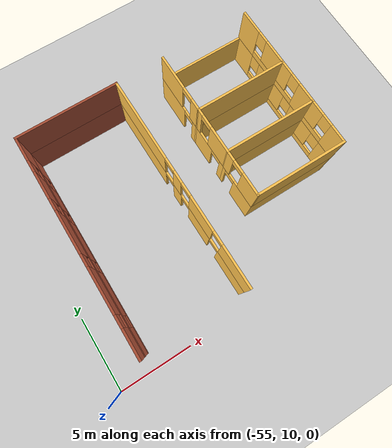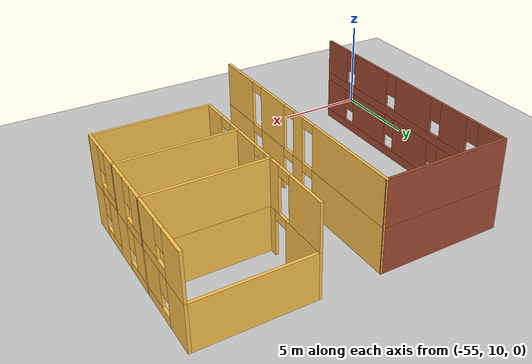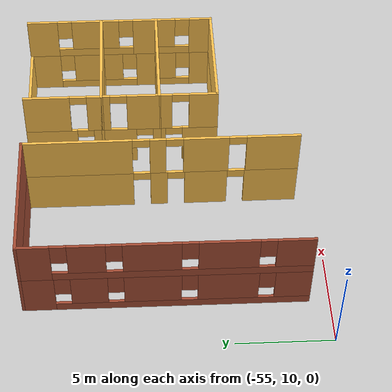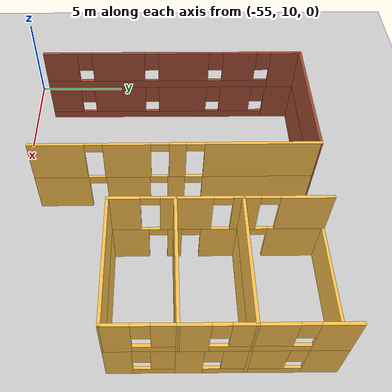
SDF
<sdf version="1.7">
 <world name="default">
  <model name="ground_plane">
   <static>1</static>
   <link name="link">
    <collision name="collision">
     <geometry><plane><normal>0 0 1</normal><size>100 100</size></plane></geometry>
     <surface>
      <contact><collide_bitmask>65535</collide_bitmask></contact>
      <friction><ode><mu>100</mu><mu2>50</mu2></ode></friction>
     </surface>
    </collision>
    <visual name="visual">
     <cast_shadows>0</cast_shadows>
     <geometry><plane><normal>0 0 1</normal><size>100 100</size></plane></geometry>
     <material>
      <script><uri>file://media/materials/scripts/gazebo.material</uri><name>Gazebo/Grey</name></script>
     </material>
    </visual>
   </link>
  </model>
  <model name="DepartmentBuilding">
   <pose>-25.6559 18.8293 0 0 -0 0</pose>
   <link name="Wall_328">
    <collision name="Wall_328_Collision">
     <geometry><box><size>6.93882 0.15 2.5</size></box></geometry>
     <pose>0 0 1.25 0 -0 0</pose>
    </collision>
    <visual name="Wall_328_Visual">
     <pose>0 0 1.25 0 -0 0</pose>
     <geometry><box><size>6.93882 0.15 2.5</size></box></geometry>
     <material>
      <script><uri>file://media/materials/scripts/gazebo.material</uri><name>Gazebo/Bricks</name></script>
      <ambient>1 1 1 1</ambient>
     </material>
     <meta><layer>0</layer></meta>
    </visual>
    <pose>-23.475 6.63906 0 0 -0 3.14159</pose>
   </link>
   <link name="Wall_332">
    <pose>-26.8694 -0.535941 0 0 -0 -1.5708</pose>
    <visual name="Wall_332_Visual_0">
     <pose>-6.38255 0 1.25 0 -0 0</pose>
     <geometry><box><size>1.73489 0.15 2.5</size></box></geometry>
     <material>
      <script><uri>file://media/materials/scripts/gazebo.material</uri><name>Gazebo/Bricks</name></script>
      <ambient>1 1 1 1</ambient>
     </material>
     <meta><layer>0</layer></meta>
    </visual>
    <collision name="Wall_332_Collision_0">
     <geometry><box><size>1.73489 0.15 2.5</size></box></geometry>
     <pose>-6.38255 0 1.25 0 -0 0</pose>
    </collision>
    <visual name="Wall_332_Visual_1">
     <pose>0.867447 0 0.25 0 -0 0</pose>
     <geometry><box><size>12.7651 0.15 0.5</size></box></geometry>
     <material>
      <script><uri>file://media/materials/scripts/gazebo.material</uri><name>Gazebo/Bricks</name></script>
      <ambient>1 1 1 1</ambient>
     </material>
     <meta><layer>0</layer></meta>
    </visual>
    <collision name="Wall_332_Collision_1">
     <geometry><box><size>12.7651 0.15 0.5</size></box></geometry>
     <pose>0.867447 0 0.25 0 -0 0</pose>
    </collision>
    <visual name="Wall_332_Visual_2">
     <pose>-3.7959 0 1.5 0 -0 0</pose>
     <geometry><box><size>1.83841 0.15 2</size></box></geometry>
     <material>
      <script><uri>file://media/materials/scripts/gazebo.material</uri><name>Gazebo/Bricks</name></script>
      <ambient>1 1 1 1</ambient>
     </material>
     <meta><layer>0</layer></meta>
    </visual>
    <collision name="Wall_332_Collision_2">
     <geometry><box><size>1.83841 0.15 2</size></box></geometry>
     <pose>-3.7959 0 1.5 0 -0 0</pose>
    </collision>
    <visual name="Wall_332_Visual_3">
     <pose>-0.647404 0 1.5 0 -0 0</pose>
     <geometry><box><size>2.85859 0.15 2</size></box></geometry>
     <material>
      <script><uri>file://media/materials/scripts/gazebo.material</uri><name>Gazebo/Bricks</name></script>
      <ambient>1 1 1 1</ambient>
     </material>
     <meta><layer>0</layer></meta>
    </visual>
    <collision name="Wall_332_Collision_3">
     <geometry><box><size>2.85859 0.15 2</size></box></geometry>
     <pose>-0.647404 0 1.5 0 -0 0</pose>
    </collision>
    <visual name="Wall_332_Visual_4">
     <pose>3.09913 0 1.5 0 -0 0</pose>
     <geometry><box><size>3.03449 0.15 2</size></box></geometry>
     <material>
      <script><uri>file://media/materials/scripts/gazebo.material</uri><name>Gazebo/Bricks</name></script>
      <ambient>1 1 1 1</ambient>
     </material>
     <meta><layer>0</layer></meta>
    </visual>
    <collision name="Wall_332_Collision_4">
     <geometry><box><size>3.03449 0.15 2</size></box></geometry>
     <pose>3.09913 0 1.5 0 -0 0</pose>
    </collision>
    <visual name="Wall_332_Visual_5">
     <pose>6.33319 0 1.5 0 -0 0</pose>
     <geometry><box><size>1.83362 0.15 2</size></box></geometry>
     <material>
      <script><uri>file://media/materials/scripts/gazebo.material</uri><name>Gazebo/Bricks</name></script>
      <ambient>1 1 1 1</ambient>
     </material>
     <meta><layer>0</layer></meta>
    </visual>
    <collision name="Wall_332_Collision_5">
     <geometry><box><size>1.83362 0.15 2</size></box></geometry>
     <pose>6.33319 0 1.5 0 -0 0</pose>
    </collision>
    <visual name="Wall_332_Visual_6">
     <pose>-5.11511 0 1.9 0 -0 0</pose>
     <geometry><box><size>0.8 0.15 1.2</size></box></geometry>
     <material>
      <script><uri>file://media/materials/scripts/gazebo.material</uri><name>Gazebo/Bricks</name></script>
      <ambient>1 1 1 1</ambient>
     </material>
     <meta><layer>0</layer></meta>
    </visual>
    <collision name="Wall_332_Collision_6">
     <geometry><box><size>0.8 0.15 1.2</size></box></geometry>
     <pose>-5.11511 0 1.9 0 -0 0</pose>
    </collision>
    <visual name="Wall_332_Visual_7">
     <pose>-2.4767 0 1.9 0 -0 0</pose>
     <geometry><box><size>0.8 0.15 1.2</size></box></geometry>
     <material>
      <script><uri>file://media/materials/scripts/gazebo.material</uri><name>Gazebo/Bricks</name></script>
      <ambient>1 1 1 1</ambient>
     </material>
     <meta><layer>0</layer></meta>
    </visual>
    <collision name="Wall_332_Collision_7">
     <geometry><box><size>0.8 0.15 1.2</size></box></geometry>
     <pose>-2.4767 0 1.9 0 -0 0</pose>
    </collision>
    <visual name="Wall_332_Visual_8">
     <pose>1.18189 0 1.9 0 -0 0</pose>
     <geometry><box><size>0.8 0.15 1.2</size></box></geometry>
     <material>
      <script><uri>file://media/materials/scripts/gazebo.material</uri><name>Gazebo/Bricks</name></script>
      <ambient>1 1 1 1</ambient>
     </material>
     <meta><layer>0</layer></meta>
    </visual>
    <collision name="Wall_332_Collision_8">
     <geometry><box><size>0.8 0.15 1.2</size></box></geometry>
     <pose>1.18189 0 1.9 0 -0 0</pose>
    </collision>
    <visual name="Wall_332_Visual_9">
     <pose>5.01638 0 1.9 0 -0 0</pose>
     <geometry><box><size>0.8 0.15 1.2</size></box></geometry>
     <material>
      <script><uri>file://media/materials/scripts/gazebo.material</uri><name>Gazebo/Bricks</name></script>
      <ambient>1 1 1 1</ambient>
     </material>
     <meta><layer>0</layer></meta>
    </visual>
    <collision name="Wall_332_Collision_9">
     <geometry><box><size>0.8 0.15 1.2</size></box></geometry>
     <pose>5.01638 0 1.9 0 -0 0</pose>
    </collision>
   </link>
   <link name="Wall_334">
    <pose>-20.05 -0.535941 0 0 -0 1.57506</pose>
    <visual name="Wall_334_Visual_0">
     <pose>-5.82562 0 1.25 0 -0 0</pose>
     <geometry><box><size>2.84889 0.15 2.5</size></box></geometry>
     <material>
      <script><uri>file://media/materials/scripts/gazebo.material</uri><name>Gazebo/Grey</name></script>
      <ambient>1 0.764706 0.305882 1</ambient>
     </material>
     <meta><layer>0</layer></meta>
    </visual>
    <collision name="Wall_334_Collision_0">
     <geometry><box><size>2.84889 0.15 2.5</size></box></geometry>
     <pose>-5.82562 0 1.25 0 -0 0</pose>
    </collision>
    <visual name="Wall_334_Visual_1">
     <pose>-2.36645 0 1.25 0 -0 0</pose>
     <geometry><box><size>2.26946 0.15 2.5</size></box></geometry>
     <material>
      <script><uri>file://media/materials/scripts/gazebo.material</uri><name>Gazebo/Grey</name></script>
      <ambient>1 0.764706 0.305882 1</ambient>
     </material>
     <meta><layer>0</layer></meta>
    </visual>
    <collision name="Wall_334_Collision_1">
     <geometry><box><size>2.26946 0.15 2.5</size></box></geometry>
     <pose>-2.36645 0 1.25 0 -0 0</pose>
    </collision>
    <visual name="Wall_334_Visual_2">
     <pose>0.119975 0 1.25 0 -0 0</pose>
     <geometry><box><size>0.903382 0.15 2.5</size></box></geometry>
     <material>
      <script><uri>file://media/materials/scripts/gazebo.material</uri><name>Gazebo/Grey</name></script>
      <ambient>1 0.764706 0.305882 1</ambient>
     </material>
     <meta><layer>0</layer></meta>
    </visual>
    <collision name="Wall_334_Collision_2">
     <geometry><box><size>0.903382 0.15 2.5</size></box></geometry>
     <pose>0.119975 0 1.25 0 -0 0</pose>
    </collision>
    <visual name="Wall_334_Visual_3">
     <pose>4.36087 0 1.25 0 -0 0</pose>
     <geometry><box><size>5.7784 0.15 2.5</size></box></geometry>
     <material>
      <script><uri>file://media/materials/scripts/gazebo.material</uri><name>Gazebo/Grey</name></script>
      <ambient>1 0.764706 0.305882 1</ambient>
     </material>
     <meta><layer>0</layer></meta>
    </visual>
    <collision name="Wall_334_Collision_3">
     <geometry><box><size>5.7784 0.15 2.5</size></box></geometry>
     <pose>4.36087 0 1.25 0 -0 0</pose>
    </collision>
    <visual name="Wall_334_Visual_4">
     <pose>-3.95117 0 2.25 0 -0 0</pose>
     <geometry><box><size>0.9 0.15 0.5</size></box></geometry>
     <material>
      <script><uri>file://media/materials/scripts/gazebo.material</uri><name>Gazebo/Grey</name></script>
      <ambient>1 0.764706 0.305882 1</ambient>
     </material>
     <meta><layer>0</layer></meta>
    </visual>
    <collision name="Wall_334_Collision_4">
     <geometry><box><size>0.9 0.15 0.5</size></box></geometry>
     <pose>-3.95117 0 2.25 0 -0 0</pose>
    </collision>
    <visual name="Wall_334_Visual_5">
     <pose>-0.781717 0 2.25 0 -0 0</pose>
     <geometry><box><size>0.9 0.15 0.5</size></box></geometry>
     <material>
      <script><uri>file://media/materials/scripts/gazebo.material</uri><name>Gazebo/Grey</name></script>
      <ambient>1 0.764706 0.305882 1</ambient>
     </material>
     <meta><layer>0</layer></meta>
    </visual>
    <collision name="Wall_334_Collision_5">
     <geometry><box><size>0.9 0.15 0.5</size></box></geometry>
     <pose>-0.781717 0 2.25 0 -0 0</pose>
    </collision>
    <visual name="Wall_334_Visual_6">
     <pose>1.02167 0 2.25 0 -0 0</pose>
     <geometry><box><size>0.9 0.15 0.5</size></box></geometry>
     <material>
      <script><uri>file://media/materials/scripts/gazebo.material</uri><name>Gazebo/Grey</name></script>
      <ambient>1 0.764706 0.305882 1</ambient>
     </material>
     <meta><layer>0</layer></meta>
    </visual>
    <collision name="Wall_334_Collision_6">
     <geometry><box><size>0.9 0.15 0.5</size></box></geometry>
     <pose>1.02167 0 2.25 0 -0 0</pose>
    </collision>
   </link>
   <link name="Wall_337">
    <collision name="Wall_337_Collision">
     <geometry><box><size>6.25 0.15 2.5</size></box></geometry>
     <pose>0 0 1.25 0 -0 0</pose>
    </collision>
    <visual name="Wall_337_Visual">
     <pose>0 0 1.25 0 -0 0</pose>
     <geometry><box><size>6.25 0.15 2.5</size></box></geometry>
     <material>
      <script><uri>file://media/materials/scripts/gazebo.material</uri><name>Gazebo/Grey</name></script>
      <ambient>1 0.764706 0.305882 1</ambient>
     </material>
     <meta><layer>0</layer></meta>
    </visual>
    <pose>-13.7306 6.63906 0 0 -0 0</pose>
   </link>
   <link name="Wall_338">
    <pose>-10.6806 4.58906 0 0 -0 -1.5708</pose>
    <visual name="Wall_338_Visual_0">
     <pose>-1.2691 0 1.25 0 -0 0</pose>
     <geometry><box><size>1.71181 0.15 2.5</size></box></geometry>
     <material>
      <script><uri>file://media/materials/scripts/gazebo.material</uri><name>Gazebo/Grey</name></script>
      <ambient>1 0.764706 0.305882 1</ambient>
     </material>
     <meta><layer>0</layer></meta>
    </visual>
    <collision name="Wall_338_Collision_0">
     <geometry><box><size>1.71181 0.15 2.5</size></box></geometry>
     <pose>-1.2691 0 1.25 0 -0 0</pose>
    </collision>
    <visual name="Wall_338_Visual_1">
     <pose>0.855905 0 0.25 0 -0 0</pose>
     <geometry><box><size>2.53819 0.15 0.5</size></box></geometry>
     <material>
      <script><uri>file://media/materials/scripts/gazebo.material</uri><name>Gazebo/Grey</name></script>
      <ambient>1 0.764706 0.305882 1</ambient>
     </material>
     <meta><layer>0</layer></meta>
    </visual>
    <collision name="Wall_338_Collision_1">
     <geometry><box><size>2.53819 0.15 0.5</size></box></geometry>
     <pose>0.855905 0 0.25 0 -0 0</pose>
    </collision>
    <visual name="Wall_338_Visual_2">
     <pose>1.25591 0 1.5 0 -0 0</pose>
     <geometry><box><size>1.73819 0.15 2</size></box></geometry>
     <material>
      <script><uri>file://media/materials/scripts/gazebo.material</uri><name>Gazebo/Grey</name></script>
      <ambient>1 0.764706 0.305882 1</ambient>
     </material>
     <meta><layer>0</layer></meta>
    </visual>
    <collision name="Wall_338_Collision_2">
     <geometry><box><size>1.73819 0.15 2</size></box></geometry>
     <pose>1.25591 0 1.5 0 -0 0</pose>
    </collision>
    <visual name="Wall_338_Visual_3">
     <pose>-0.01319 0 1.9 0 -0 0</pose>
     <geometry><box><size>0.8 0.15 1.2</size></box></geometry>
     <material>
      <script><uri>file://media/materials/scripts/gazebo.material</uri><name>Gazebo/Grey</name></script>
      <ambient>1 0.764706 0.305882 1</ambient>
     </material>
     <meta><layer>0</layer></meta>
    </visual>
    <collision name="Wall_338_Collision_3">
     <geometry><box><size>0.8 0.15 1.2</size></box></geometry>
     <pose>-0.01319 0 1.9 0 -0 0</pose>
    </collision>
   </link>
   <link name="Wall_339">
    <collision name="Wall_339_Collision">
     <geometry><box><size>6.25 0.15 2.5</size></box></geometry>
     <pose>0 0 1.25 0 -0 0</pose>
    </collision>
    <visual name="Wall_339_Visual">
     <pose>0 0 1.25 0 -0 0</pose>
     <geometry><box><size>6.25 0.15 2.5</size></box></geometry>
     <material>
      <script><uri>file://media/materials/scripts/gazebo.material</uri><name>Gazebo/Grey</name></script>
      <ambient>1 0.764706 0.305882 1</ambient>
     </material>
     <meta><layer>0</layer></meta>
    </visual>
    <pose>-13.7306 2.53906 0 0 -0 3.14159</pose>
   </link>
   <link name="Wall_340">
    <pose>-16.7806 4.58906 0 0 -0 1.5708</pose>
    <visual name="Wall_340_Visual_0">
     <pose>-1.84305 0 1.25 0 -0 0</pose>
     <geometry><box><size>0.563904 0.15 2.5</size></box></geometry>
     <material>
      <script><uri>file://media/materials/scripts/gazebo.material</uri><name>Gazebo/Grey</name></script>
      <ambient>1 0.764706 0.305882 1</ambient>
     </material>
     <meta><layer>0</layer></meta>
    </visual>
    <collision name="Wall_340_Collision_0">
     <geometry><box><size>0.563904 0.15 2.5</size></box></geometry>
     <pose>-1.84305 0 1.25 0 -0 0</pose>
    </collision>
    <visual name="Wall_340_Visual_1">
     <pose>0.731952 0 1.25 0 -0 0</pose>
     <geometry><box><size>2.7861 0.15 2.5</size></box></geometry>
     <material>
      <script><uri>file://media/materials/scripts/gazebo.material</uri><name>Gazebo/Grey</name></script>
      <ambient>1 0.764706 0.305882 1</ambient>
     </material>
     <meta><layer>0</layer></meta>
    </visual>
    <collision name="Wall_340_Collision_1">
     <geometry><box><size>2.7861 0.15 2.5</size></box></geometry>
     <pose>0.731952 0 1.25 0 -0 0</pose>
    </collision>
    <visual name="Wall_340_Visual_2">
     <pose>-1.1111 0 2.25 0 -0 0</pose>
     <geometry><box><size>0.9 0.15 0.5</size></box></geometry>
     <material>
      <script><uri>file://media/materials/scripts/gazebo.material</uri><name>Gazebo/Grey</name></script>
      <ambient>1 0.764706 0.305882 1</ambient>
     </material>
     <meta><layer>0</layer></meta>
    </visual>
    <collision name="Wall_340_Collision_2">
     <geometry><box><size>0.9 0.15 0.5</size></box></geometry>
     <pose>-1.1111 0 2.25 0 -0 0</pose>
    </collision>
   </link>
   <link name="Wall_342">
    <pose>-16.7806 0.989059 0 0 -0 -1.5708</pose>
    <visual name="Wall_342_Visual_0">
     <pose>-0.664562 0 1.25 0 -0 0</pose>
     <geometry><box><size>1.92088 0.15 2.5</size></box></geometry>
     <material>
      <script><uri>file://media/materials/scripts/gazebo.material</uri><name>Gazebo/Grey</name></script>
      <ambient>1 0.764706 0.305882 1</ambient>
     </material>
     <meta><layer>0</layer></meta>
    </visual>
    <collision name="Wall_342_Collision_0">
     <geometry><box><size>1.92088 0.15 2.5</size></box></geometry>
     <pose>-0.664562 0 1.25 0 -0 0</pose>
    </collision>
    <visual name="Wall_342_Visual_1">
     <pose>1.41044 0 1.25 0 -0 0</pose>
     <geometry><box><size>0.429125 0.15 2.5</size></box></geometry>
     <material>
      <script><uri>file://media/materials/scripts/gazebo.material</uri><name>Gazebo/Grey</name></script>
      <ambient>1 0.764706 0.305882 1</ambient>
     </material>
     <meta><layer>0</layer></meta>
    </visual>
    <collision name="Wall_342_Collision_1">
     <geometry><box><size>0.429125 0.15 2.5</size></box></geometry>
     <pose>1.41044 0 1.25 0 -0 0</pose>
    </collision>
    <visual name="Wall_342_Visual_2">
     <pose>0.745875 0 2.25 0 -0 0</pose>
     <geometry><box><size>0.9 0.15 0.5</size></box></geometry>
     <material>
      <script><uri>file://media/materials/scripts/gazebo.material</uri><name>Gazebo/Grey</name></script>
      <ambient>1 0.764706 0.305882 1</ambient>
     </material>
     <meta><layer>0</layer></meta>
    </visual>
    <collision name="Wall_342_Collision_2">
     <geometry><box><size>0.9 0.15 0.5</size></box></geometry>
     <pose>0.745875 0 2.25 0 -0 0</pose>
    </collision>
   </link>
   <link name="Wall_343">
    <collision name="Wall_343_Collision">
     <geometry><box><size>6.25 0.15 2.5</size></box></geometry>
     <pose>0 0 1.25 0 -0 0</pose>
    </collision>
    <visual name="Wall_343_Visual">
     <pose>0 0 1.25 0 -0 0</pose>
     <geometry><box><size>6.25 0.15 2.5</size></box></geometry>
     <material>
      <script><uri>file://media/materials/scripts/gazebo.material</uri><name>Gazebo/Grey</name></script>
      <ambient>1 0.764706 0.305882 1</ambient>
     </material>
     <meta><layer>0</layer></meta>
    </visual>
    <pose>-13.7306 -0.560941 0 0 -0 0</pose>
   </link>
   <link name="Wall_344">
    <pose>-10.6806 0.989059 0 0 -0 1.5708</pose>
    <visual name="Wall_344_Visual_0">
     <pose>-1.01073 0 1.25 0 -0 0</pose>
     <geometry><box><size>1.22854 0.15 2.5</size></box></geometry>
     <material>
      <script><uri>file://media/materials/scripts/gazebo.material</uri><name>Gazebo/Grey</name></script>
      <ambient>1 0.764706 0.305882 1</ambient>
     </material>
     <meta><layer>0</layer></meta>
    </visual>
    <collision name="Wall_344_Collision_0">
     <geometry><box><size>1.22854 0.15 2.5</size></box></geometry>
     <pose>-1.01073 0 1.25 0 -0 0</pose>
    </collision>
    <visual name="Wall_344_Visual_1">
     <pose>0.614271 0 0.25 0 -0 0</pose>
     <geometry><box><size>2.02146 0.15 0.5</size></box></geometry>
     <material>
      <script><uri>file://media/materials/scripts/gazebo.material</uri><name>Gazebo/Grey</name></script>
      <ambient>1 0.764706 0.305882 1</ambient>
     </material>
     <meta><layer>0</layer></meta>
    </visual>
    <collision name="Wall_344_Collision_1">
     <geometry><box><size>2.02146 0.15 0.5</size></box></geometry>
     <pose>0.614271 0 0.25 0 -0 0</pose>
    </collision>
    <visual name="Wall_344_Visual_2">
     <pose>1.01427 0 1.5 0 -0 0</pose>
     <geometry><box><size>1.22146 0.15 2</size></box></geometry>
     <material>
      <script><uri>file://media/materials/scripts/gazebo.material</uri><name>Gazebo/Grey</name></script>
      <ambient>1 0.764706 0.305882 1</ambient>
     </material>
     <meta><layer>0</layer></meta>
    </visual>
    <collision name="Wall_344_Collision_2">
     <geometry><box><size>1.22146 0.15 2</size></box></geometry>
     <pose>1.01427 0 1.5 0 -0 0</pose>
    </collision>
    <visual name="Wall_344_Visual_3">
     <pose>0.003543 0 1.9 0 -0 0</pose>
     <geometry><box><size>0.8 0.15 1.2</size></box></geometry>
     <material>
      <script><uri>file://media/materials/scripts/gazebo.material</uri><name>Gazebo/Grey</name></script>
      <ambient>1 0.764706 0.305882 1</ambient>
     </material>
     <meta><layer>0</layer></meta>
    </visual>
    <collision name="Wall_344_Collision_3">
     <geometry><box><size>0.8 0.15 1.2</size></box></geometry>
     <pose>0.003543 0 1.9 0 -0 0</pose>
    </collision>
   </link>
   <link name="Wall_346">
    <pose>-16.7806 -2.11094 0 0 -0 -1.5708</pose>
    <visual name="Wall_346_Visual_0">
     <pose>-1.41715 0 1.25 0 -0 0</pose>
     <geometry><box><size>0.415695 0.15 2.5</size></box></geometry>
     <material>
      <script><uri>file://media/materials/scripts/gazebo.material</uri><name>Gazebo/Grey</name></script>
      <ambient>1 0.764706 0.305882 1</ambient>
     </material>
     <meta><layer>0</layer></meta>
    </visual>
    <collision name="Wall_346_Collision_0">
     <geometry><box><size>0.415695 0.15 2.5</size></box></geometry>
     <pose>-1.41715 0 1.25 0 -0 0</pose>
    </collision>
    <visual name="Wall_346_Visual_1">
     <pose>0.657847 0 1.25 0 -0 0</pose>
     <geometry><box><size>1.9343 0.15 2.5</size></box></geometry>
     <material>
      <script><uri>file://media/materials/scripts/gazebo.material</uri><name>Gazebo/Grey</name></script>
      <ambient>1 0.764706 0.305882 1</ambient>
     </material>
     <meta><layer>0</layer></meta>
    </visual>
    <collision name="Wall_346_Collision_1">
     <geometry><box><size>1.9343 0.15 2.5</size></box></geometry>
     <pose>0.657847 0 1.25 0 -0 0</pose>
    </collision>
    <visual name="Wall_346_Visual_2">
     <pose>-0.759305 0 2.25 0 -0 0</pose>
     <geometry><box><size>0.9 0.15 0.5</size></box></geometry>
     <material>
      <script><uri>file://media/materials/scripts/gazebo.material</uri><name>Gazebo/Grey</name></script>
      <ambient>1 0.764706 0.305882 1</ambient>
     </material>
     <meta><layer>0</layer></meta>
    </visual>
    <collision name="Wall_346_Collision_2">
     <geometry><box><size>0.9 0.15 0.5</size></box></geometry>
     <pose>-0.759305 0 2.25 0 -0 0</pose>
    </collision>
   </link>
   <link name="Wall_347">
    <collision name="Wall_347_Collision">
     <geometry><box><size>6.25 0.15 2.5</size></box></geometry>
     <pose>0 0 1.25 0 -0 0</pose>
    </collision>
    <visual name="Wall_347_Visual">
     <pose>0 0 1.25 0 -0 0</pose>
     <geometry><box><size>6.25 0.15 2.5</size></box></geometry>
     <material>
      <script><uri>file://media/materials/scripts/gazebo.material</uri><name>Gazebo/Grey</name></script>
      <ambient>1 0.764706 0.305882 1</ambient>
     </material>
     <meta><layer>0</layer></meta>
    </visual>
    <pose>-13.7306 -3.66094 0 0 -0 0</pose>
   </link>
   <link name="Wall_348">
    <pose>-10.6806 -2.11094 0 0 -0 1.5708</pose>
    <visual name="Wall_348_Visual_0">
     <pose>-1.00554 0 1.25 0 -0 0</pose>
     <geometry><box><size>1.23893 0.15 2.5</size></box></geometry>
     <material>
      <script><uri>file://media/materials/scripts/gazebo.material</uri><name>Gazebo/Grey</name></script>
      <ambient>1 0.764706 0.305882 1</ambient>
     </material>
     <meta><layer>0</layer></meta>
    </visual>
    <collision name="Wall_348_Collision_0">
     <geometry><box><size>1.23893 0.15 2.5</size></box></geometry>
     <pose>-1.00554 0 1.25 0 -0 0</pose>
    </collision>
    <visual name="Wall_348_Visual_1">
     <pose>0.619465 0 0.25 0 -0 0</pose>
     <geometry><box><size>2.01107 0.15 0.5</size></box></geometry>
     <material>
      <script><uri>file://media/materials/scripts/gazebo.material</uri><name>Gazebo/Grey</name></script>
      <ambient>1 0.764706 0.305882 1</ambient>
     </material>
     <meta><layer>0</layer></meta>
    </visual>
    <collision name="Wall_348_Collision_1">
     <geometry><box><size>2.01107 0.15 0.5</size></box></geometry>
     <pose>0.619465 0 0.25 0 -0 0</pose>
    </collision>
    <visual name="Wall_348_Visual_2">
     <pose>1.01947 0 1.5 0 -0 0</pose>
     <geometry><box><size>1.21107 0.15 2</size></box></geometry>
     <material>
      <script><uri>file://media/materials/scripts/gazebo.material</uri><name>Gazebo/Grey</name></script>
      <ambient>1 0.764706 0.305882 1</ambient>
     </material>
     <meta><layer>0</layer></meta>
    </visual>
    <collision name="Wall_348_Collision_2">
     <geometry><box><size>1.21107 0.15 2</size></box></geometry>
     <pose>1.01947 0 1.5 0 -0 0</pose>
    </collision>
    <visual name="Wall_348_Visual_3">
     <pose>0.01393 0 1.9 0 -0 0</pose>
     <geometry><box><size>0.8 0.15 1.2</size></box></geometry>
     <material>
      <script><uri>file://media/materials/scripts/gazebo.material</uri><name>Gazebo/Grey</name></script>
      <ambient>1 0.764706 0.305882 1</ambient>
     </material>
     <meta><layer>0</layer></meta>
    </visual>
    <collision name="Wall_348_Collision_3">
     <geometry><box><size>0.8 0.15 1.2</size></box></geometry>
     <pose>0.01393 0 1.9 0 -0 0</pose>
    </collision>
   </link>
   <link name="Wall_973">
    <collision name="Wall_973_Collision">
     <geometry><box><size>6.93882 0.15 2.5</size></box></geometry>
     <pose>0 0 1.25 0 -0 0</pose>
    </collision>
    <visual name="Wall_973_Visual">
     <pose>0 0 1.25 0 -0 0</pose>
     <geometry><box><size>6.93882 0.15 2.5</size></box></geometry>
     <material>
      <script><uri>file://media/materials/scripts/gazebo.material</uri><name>Gazebo/Bricks</name></script>
      <ambient>1 1 1 1</ambient>
     </material>
     <meta><layer>1</layer></meta>
    </visual>
    <pose>-23.475 6.63906 2.5 0 -0 3.14159</pose>
   </link>
   <link name="Wall_974">
    <pose>-26.8694 -0.535941 2.5 0 -0 -1.5708</pose>
    <visual name="Wall_974_Visual_0">
     <pose>-6.40088 0 1.25 0 -0 0</pose>
     <geometry><box><size>1.69823 0.15 2.5</size></box></geometry>
     <material>
      <script><uri>file://media/materials/scripts/gazebo.material</uri><name>Gazebo/Bricks</name></script>
      <ambient>1 1 1 1</ambient>
     </material>
     <meta><layer>1</layer></meta>
    </visual>
    <collision name="Wall_974_Collision_0">
     <geometry><box><size>1.69823 0.15 2.5</size></box></geometry>
     <pose>-6.40088 0 1.25 0 -0 0</pose>
    </collision>
    <visual name="Wall_974_Visual_1">
     <pose>0.849118 0 0.25 0 -0 0</pose>
     <geometry><box><size>12.8018 0.15 0.5</size></box></geometry>
     <material>
      <script><uri>file://media/materials/scripts/gazebo.material</uri><name>Gazebo/Bricks</name></script>
      <ambient>1 1 1 1</ambient>
     </material>
     <meta><layer>1</layer></meta>
    </visual>
    <collision name="Wall_974_Collision_1">
     <geometry><box><size>12.8018 0.15 0.5</size></box></geometry>
     <pose>0.849118 0 0.25 0 -0 0</pose>
    </collision>
    <visual name="Wall_974_Visual_2">
     <pose>-3.82109 0 1.5 0 -0 0</pose>
     <geometry><box><size>1.86135 0.15 2</size></box></geometry>
     <material>
      <script><uri>file://media/materials/scripts/gazebo.material</uri><name>Gazebo/Bricks</name></script>
      <ambient>1 1 1 1</ambient>
     </material>
     <meta><layer>1</layer></meta>
    </visual>
    <collision name="Wall_974_Collision_2">
     <geometry><box><size>1.86135 0.15 2</size></box></geometry>
     <pose>-3.82109 0 1.5 0 -0 0</pose>
    </collision>
    <visual name="Wall_974_Visual_3">
     <pose>-0.655001 0 1.5 0 -0 0</pose>
     <geometry><box><size>2.87083 0.15 2</size></box></geometry>
     <material>
      <script><uri>file://media/materials/scripts/gazebo.material</uri><name>Gazebo/Bricks</name></script>
      <ambient>1 1 1 1</ambient>
     </material>
     <meta><layer>1</layer></meta>
    </visual>
    <collision name="Wall_974_Collision_3">
     <geometry><box><size>2.87083 0.15 2</size></box></geometry>
     <pose>-0.655001 0 1.5 0 -0 0</pose>
    </collision>
    <visual name="Wall_974_Visual_4">
     <pose>3.06171 0 1.5 0 -0 0</pose>
     <geometry><box><size>2.9626 0.15 2</size></box></geometry>
     <material>
      <script><uri>file://media/materials/scripts/gazebo.material</uri><name>Gazebo/Bricks</name></script>
      <ambient>1 1 1 1</ambient>
     </material>
     <meta><layer>1</layer></meta>
    </visual>
    <collision name="Wall_974_Collision_4">
     <geometry><box><size>2.9626 0.15 2</size></box></geometry>
     <pose>3.06171 0 1.5 0 -0 0</pose>
    </collision>
    <visual name="Wall_974_Visual_5">
     <pose>6.2965 0 1.5 0 -0 0</pose>
     <geometry><box><size>1.90699 0.15 2</size></box></geometry>
     <material>
      <script><uri>file://media/materials/scripts/gazebo.material</uri><name>Gazebo/Bricks</name></script>
      <ambient>1 1 1 1</ambient>
     </material>
     <meta><layer>1</layer></meta>
    </visual>
    <collision name="Wall_974_Collision_5">
     <geometry><box><size>1.90699 0.15 2</size></box></geometry>
     <pose>6.2965 0 1.5 0 -0 0</pose>
    </collision>
    <visual name="Wall_974_Visual_6">
     <pose>-5.15177 0 1.9 0 -0 0</pose>
     <geometry><box><size>0.8 0.15 1.2</size></box></geometry>
     <material>
      <script><uri>file://media/materials/scripts/gazebo.material</uri><name>Gazebo/Bricks</name></script>
      <ambient>1 1 1 1</ambient>
     </material>
     <meta><layer>1</layer></meta>
    </visual>
    <collision name="Wall_974_Collision_6">
     <geometry><box><size>0.8 0.15 1.2</size></box></geometry>
     <pose>-5.15177 0 1.9 0 -0 0</pose>
    </collision>
    <visual name="Wall_974_Visual_7">
     <pose>-2.49042 0 1.9 0 -0 0</pose>
     <geometry><box><size>0.8 0.15 1.2</size></box></geometry>
     <material>
      <script><uri>file://media/materials/scripts/gazebo.material</uri><name>Gazebo/Bricks</name></script>
      <ambient>1 1 1 1</ambient>
     </material>
     <meta><layer>1</layer></meta>
    </visual>
    <collision name="Wall_974_Collision_7">
     <geometry><box><size>0.8 0.15 1.2</size></box></geometry>
     <pose>-2.49042 0 1.9 0 -0 0</pose>
    </collision>
    <visual name="Wall_974_Visual_8">
     <pose>1.18041 0 1.9 0 -0 0</pose>
     <geometry><box><size>0.8 0.15 1.2</size></box></geometry>
     <material>
      <script><uri>file://media/materials/scripts/gazebo.material</uri><name>Gazebo/Bricks</name></script>
      <ambient>1 1 1 1</ambient>
     </material>
     <meta><layer>1</layer></meta>
    </visual>
    <collision name="Wall_974_Collision_8">
     <geometry><box><size>0.8 0.15 1.2</size></box></geometry>
     <pose>1.18041 0 1.9 0 -0 0</pose>
    </collision>
    <visual name="Wall_974_Visual_9">
     <pose>4.94301 0 1.9 0 -0 0</pose>
     <geometry><box><size>0.8 0.15 1.2</size></box></geometry>
     <material>
      <script><uri>file://media/materials/scripts/gazebo.material</uri><name>Gazebo/Bricks</name></script>
      <ambient>1 1 1 1</ambient>
     </material>
     <meta><layer>1</layer></meta>
    </visual>
    <collision name="Wall_974_Collision_9">
     <geometry><box><size>0.8 0.15 1.2</size></box></geometry>
     <pose>4.94301 0 1.9 0 -0 0</pose>
    </collision>
   </link>
   <link name="Wall_976">
    <pose>-20.05 -0.535941 2.5 0 -0 1.57506</pose>
    <visual name="Wall_976_Visual_0">
     <pose>-5.84682 0 1.25 0 -0 0</pose>
     <geometry><box><size>2.80649 0.15 2.5</size></box></geometry>
     <material>
      <script><uri>file://media/materials/scripts/gazebo.material</uri><name>Gazebo/Grey</name></script>
      <ambient>1 0.764706 0.305882 1</ambient>
     </material>
     <meta><layer>1</layer></meta>
    </visual>
    <collision name="Wall_976_Collision_0">
     <geometry><box><size>2.80649 0.15 2.5</size></box></geometry>
     <pose>-5.84682 0 1.25 0 -0 0</pose>
    </collision>
    <visual name="Wall_976_Visual_1">
     <pose>-2.35521 0 1.25 0 -0 0</pose>
     <geometry><box><size>2.37675 0.15 2.5</size></box></geometry>
     <material>
      <script><uri>file://media/materials/scripts/gazebo.material</uri><name>Gazebo/Grey</name></script>
      <ambient>1 0.764706 0.305882 1</ambient>
     </material>
     <meta><layer>1</layer></meta>
    </visual>
    <collision name="Wall_976_Collision_1">
     <geometry><box><size>2.37675 0.15 2.5</size></box></geometry>
     <pose>-2.35521 0 1.25 0 -0 0</pose>
    </collision>
    <visual name="Wall_976_Visual_2">
     <pose>0.161079 0 1.25 0 -0 0</pose>
     <geometry><box><size>0.855824 0.15 2.5</size></box></geometry>
     <material>
      <script><uri>file://media/materials/scripts/gazebo.material</uri><name>Gazebo/Grey</name></script>
      <ambient>1 0.764706 0.305882 1</ambient>
     </material>
     <meta><layer>1</layer></meta>
    </visual>
    <collision name="Wall_976_Collision_2">
     <geometry><box><size>0.855824 0.15 2.5</size></box></geometry>
     <pose>0.161079 0 1.25 0 -0 0</pose>
    </collision>
    <visual name="Wall_976_Visual_3">
     <pose>4.36953 0 1.25 0 -0 0</pose>
     <geometry><box><size>5.76107 0.15 2.5</size></box></geometry>
     <material>
      <script><uri>file://media/materials/scripts/gazebo.material</uri><name>Gazebo/Grey</name></script>
      <ambient>1 0.764706 0.305882 1</ambient>
     </material>
     <meta><layer>1</layer></meta>
    </visual>
    <collision name="Wall_976_Collision_3">
     <geometry><box><size>5.76107 0.15 2.5</size></box></geometry>
     <pose>4.36953 0 1.25 0 -0 0</pose>
    </collision>
    <visual name="Wall_976_Visual_4">
     <pose>-3.99358 0 2.25 0 -0 0</pose>
     <geometry><box><size>0.9 0.15 0.5</size></box></geometry>
     <material>
      <script><uri>file://media/materials/scripts/gazebo.material</uri><name>Gazebo/Grey</name></script>
      <ambient>1 0.764706 0.305882 1</ambient>
     </material>
     <meta><layer>1</layer></meta>
    </visual>
    <collision name="Wall_976_Collision_4">
     <geometry><box><size>0.9 0.15 0.5</size></box></geometry>
     <pose>-3.99358 0 2.25 0 -0 0</pose>
    </collision>
    <visual name="Wall_976_Visual_5">
     <pose>-0.716833 0 2.25 0 -0 0</pose>
     <geometry><box><size>0.9 0.15 0.5</size></box></geometry>
     <material>
      <script><uri>file://media/materials/scripts/gazebo.material</uri><name>Gazebo/Grey</name></script>
      <ambient>1 0.764706 0.305882 1</ambient>
     </material>
     <meta><layer>1</layer></meta>
    </visual>
    <collision name="Wall_976_Collision_5">
     <geometry><box><size>0.9 0.15 0.5</size></box></geometry>
     <pose>-0.716833 0 2.25 0 -0 0</pose>
    </collision>
    <visual name="Wall_976_Visual_6">
     <pose>1.03899 0 2.25 0 -0 0</pose>
     <geometry><box><size>0.9 0.15 0.5</size></box></geometry>
     <material>
      <script><uri>file://media/materials/scripts/gazebo.material</uri><name>Gazebo/Grey</name></script>
      <ambient>1 0.764706 0.305882 1</ambient>
     </material>
     <meta><layer>1</layer></meta>
    </visual>
    <collision name="Wall_976_Collision_6">
     <geometry><box><size>0.9 0.15 0.5</size></box></geometry>
     <pose>1.03899 0 2.25 0 -0 0</pose>
    </collision>
   </link>
   <link name="Wall_979">
    <pose>-10.6789 4.58509 2.5 0 -0 -1.56997</pose>
    <visual name="Wall_979_Visual_0">
     <pose>-1.27868 0 1.25 0 -0 0</pose>
     <geometry><box><size>1.70057 0.15 2.5</size></box></geometry>
     <material>
      <script><uri>file://media/materials/scripts/gazebo.material</uri><name>Gazebo/Grey</name></script>
      <ambient>1 0.764706 0.305882 1</ambient>
     </material>
     <meta><layer>1</layer></meta>
    </visual>
    <collision name="Wall_979_Collision_0">
     <geometry><box><size>1.70057 0.15 2.5</size></box></geometry>
     <pose>-1.27868 0 1.25 0 -0 0</pose>
    </collision>
    <visual name="Wall_979_Visual_1">
     <pose>0.850287 0 0.25 0 -0 0</pose>
     <geometry><box><size>2.55736 0.15 0.5</size></box></geometry>
     <material>
      <script><uri>file://media/materials/scripts/gazebo.material</uri><name>Gazebo/Grey</name></script>
      <ambient>1 0.764706 0.305882 1</ambient>
     </material>
     <meta><layer>1</layer></meta>
    </visual>
    <collision name="Wall_979_Collision_1">
     <geometry><box><size>2.55736 0.15 0.5</size></box></geometry>
     <pose>0.850287 0 0.25 0 -0 0</pose>
    </collision>
    <visual name="Wall_979_Visual_2">
     <pose>1.25029 0 1.5 0 -0 0</pose>
     <geometry><box><size>1.75736 0.15 2</size></box></geometry>
     <material>
      <script><uri>file://media/materials/scripts/gazebo.material</uri><name>Gazebo/Grey</name></script>
      <ambient>1 0.764706 0.305882 1</ambient>
     </material>
     <meta><layer>1</layer></meta>
    </visual>
    <collision name="Wall_979_Collision_2">
     <geometry><box><size>1.75736 0.15 2</size></box></geometry>
     <pose>1.25029 0 1.5 0 -0 0</pose>
    </collision>
    <visual name="Wall_979_Visual_3">
     <pose>-0.028392 0 1.9 0 -0 0</pose>
     <geometry><box><size>0.8 0.15 1.2</size></box></geometry>
     <material>
      <script><uri>file://media/materials/scripts/gazebo.material</uri><name>Gazebo/Grey</name></script>
      <ambient>1 0.764706 0.305882 1</ambient>
     </material>
     <meta><layer>1</layer></meta>
    </visual>
    <collision name="Wall_979_Collision_3">
     <geometry><box><size>0.8 0.15 1.2</size></box></geometry>
     <pose>-0.028392 0 1.9 0 -0 0</pose>
    </collision>
   </link>
   <link name="Wall_980">
    <collision name="Wall_980_Collision">
     <geometry><box><size>6.25341 0.15 2.5</size></box></geometry>
     <pose>0 0 1.25 0 -0 0</pose>
    </collision>
    <visual name="Wall_980_Visual">
     <pose>0 0 1.25 0 -0 0</pose>
     <geometry><box><size>6.25341 0.15 2.5</size></box></geometry>
     <material>
      <script><uri>file://media/materials/scripts/gazebo.material</uri><name>Gazebo/Grey</name></script>
      <ambient>1 0.764706 0.305882 1</ambient>
     </material>
     <meta><layer>1</layer></meta>
    </visual>
    <pose>-13.7289 2.53509 2.5 0 -0 3.14029</pose>
   </link>
   <link name="Wall_981">
    <pose>-16.7806 4.58906 2.5 0 -0 1.5708</pose>
    <visual name="Wall_981_Visual_0">
     <pose>-1.68958 0 1.25 0 -0 0</pose>
     <geometry><box><size>0.87084 0.15 2.5</size></box></geometry>
     <material>
      <script><uri>file://media/materials/scripts/gazebo.material</uri><name>Gazebo/Grey</name></script>
      <ambient>1 0.764706 0.305882 1</ambient>
     </material>
     <meta><layer>1</layer></meta>
    </visual>
    <collision name="Wall_981_Collision_0">
     <geometry><box><size>0.87084 0.15 2.5</size></box></geometry>
     <pose>-1.68958 0 1.25 0 -0 0</pose>
    </collision>
    <visual name="Wall_981_Visual_1">
     <pose>0.88542 0 1.25 0 -0 0</pose>
     <geometry><box><size>2.47916 0.15 2.5</size></box></geometry>
     <material>
      <script><uri>file://media/materials/scripts/gazebo.material</uri><name>Gazebo/Grey</name></script>
      <ambient>1 0.764706 0.305882 1</ambient>
     </material>
     <meta><layer>1</layer></meta>
    </visual>
    <collision name="Wall_981_Collision_1">
     <geometry><box><size>2.47916 0.15 2.5</size></box></geometry>
     <pose>0.88542 0 1.25 0 -0 0</pose>
    </collision>
    <visual name="Wall_981_Visual_2">
     <pose>-0.80416 0 2.25 0 -0 0</pose>
     <geometry><box><size>0.9 0.15 0.5</size></box></geometry>
     <material>
      <script><uri>file://media/materials/scripts/gazebo.material</uri><name>Gazebo/Grey</name></script>
      <ambient>1 0.764706 0.305882 1</ambient>
     </material>
     <meta><layer>1</layer></meta>
    </visual>
    <collision name="Wall_981_Collision_2">
     <geometry><box><size>0.9 0.15 0.5</size></box></geometry>
     <pose>-0.80416 0 2.25 0 -0 0</pose>
    </collision>
   </link>
   <link name="Wall_982">
    <pose>-16.7806 0.989059 2.5 0 -0 -1.5708</pose>
    <visual name="Wall_982_Visual_0">
     <pose>-1.36209 0 1.25 0 -0 0</pose>
     <geometry><box><size>0.525826 0.15 2.5</size></box></geometry>
     <material>
      <script><uri>file://media/materials/scripts/gazebo.material</uri><name>Gazebo/Grey</name></script>
      <ambient>1 0.764706 0.305882 1</ambient>
     </material>
     <meta><layer>1</layer></meta>
    </visual>
    <collision name="Wall_982_Collision_0">
     <geometry><box><size>0.525826 0.15 2.5</size></box></geometry>
     <pose>-1.36209 0 1.25 0 -0 0</pose>
    </collision>
    <visual name="Wall_982_Visual_1">
     <pose>0.712913 0 1.25 0 -0 0</pose>
     <geometry><box><size>1.82417 0.15 2.5</size></box></geometry>
     <material>
      <script><uri>file://media/materials/scripts/gazebo.material</uri><name>Gazebo/Grey</name></script>
      <ambient>1 0.764706 0.305882 1</ambient>
     </material>
     <meta><layer>1</layer></meta>
    </visual>
    <collision name="Wall_982_Collision_1">
     <geometry><box><size>1.82417 0.15 2.5</size></box></geometry>
     <pose>0.712913 0 1.25 0 -0 0</pose>
    </collision>
    <visual name="Wall_982_Visual_2">
     <pose>-0.649174 0 2.25 0 -0 0</pose>
     <geometry><box><size>0.9 0.15 0.5</size></box></geometry>
     <material>
      <script><uri>file://media/materials/scripts/gazebo.material</uri><name>Gazebo/Grey</name></script>
      <ambient>1 0.764706 0.305882 1</ambient>
     </material>
     <meta><layer>1</layer></meta>
    </visual>
    <collision name="Wall_982_Collision_2">
     <geometry><box><size>0.9 0.15 0.5</size></box></geometry>
     <pose>-0.649174 0 2.25 0 -0 0</pose>
    </collision>
   </link>
   <link name="Wall_983">
    <collision name="Wall_983_Collision">
     <geometry><box><size>6.25341 0.15 2.5</size></box></geometry>
     <pose>0 0 1.25 0 -0 0</pose>
    </collision>
    <visual name="Wall_983_Visual">
     <pose>0 0 1.25 0 -0 0</pose>
     <geometry><box><size>6.25341 0.15 2.5</size></box></geometry>
     <material>
      <script><uri>file://media/materials/scripts/gazebo.material</uri><name>Gazebo/Grey</name></script>
      <ambient>1 0.764706 0.305882 1</ambient>
     </material>
     <meta><layer>1</layer></meta>
    </visual>
    <pose>-13.7289 -0.564906 2.5 0 -0 -0.001299</pose>
   </link>
   <link name="Wall_984">
    <pose>-10.6772 0.98113 2.5 0 -0 1.5708</pose>
    <visual name="Wall_984_Visual_0">
     <pose>-0.929297 0 1.25 0 -0 0</pose>
     <geometry><box><size>1.39141 0.15 2.5</size></box></geometry>
     <material>
      <script><uri>file://media/materials/scripts/gazebo.material</uri><name>Gazebo/Grey</name></script>
      <ambient>1 0.764706 0.305882 1</ambient>
     </material>
     <meta><layer>1</layer></meta>
    </visual>
    <collision name="Wall_984_Collision_0">
     <geometry><box><size>1.39141 0.15 2.5</size></box></geometry>
     <pose>-0.929297 0 1.25 0 -0 0</pose>
    </collision>
    <visual name="Wall_984_Visual_1">
     <pose>0.695703 0 0.25 0 -0 0</pose>
     <geometry><box><size>1.85859 0.15 0.5</size></box></geometry>
     <material>
      <script><uri>file://media/materials/scripts/gazebo.material</uri><name>Gazebo/Grey</name></script>
      <ambient>1 0.764706 0.305882 1</ambient>
     </material>
     <meta><layer>1</layer></meta>
    </visual>
    <collision name="Wall_984_Collision_1">
     <geometry><box><size>1.85859 0.15 0.5</size></box></geometry>
     <pose>0.695703 0 0.25 0 -0 0</pose>
    </collision>
    <visual name="Wall_984_Visual_2">
     <pose>1.0957 0 1.5 0 -0 0</pose>
     <geometry><box><size>1.05859 0.15 2</size></box></geometry>
     <material>
      <script><uri>file://media/materials/scripts/gazebo.material</uri><name>Gazebo/Grey</name></script>
      <ambient>1 0.764706 0.305882 1</ambient>
     </material>
     <meta><layer>1</layer></meta>
    </visual>
    <collision name="Wall_984_Collision_2">
     <geometry><box><size>1.05859 0.15 2</size></box></geometry>
     <pose>1.0957 0 1.5 0 -0 0</pose>
    </collision>
    <visual name="Wall_984_Visual_3">
     <pose>0.166406 0 1.9 0 -0 0</pose>
     <geometry><box><size>0.8 0.15 1.2</size></box></geometry>
     <material>
      <script><uri>file://media/materials/scripts/gazebo.material</uri><name>Gazebo/Grey</name></script>
      <ambient>1 0.764706 0.305882 1</ambient>
     </material>
     <meta><layer>1</layer></meta>
    </visual>
    <collision name="Wall_984_Collision_3">
     <geometry><box><size>0.8 0.15 1.2</size></box></geometry>
     <pose>0.166406 0 1.9 0 -0 0</pose>
    </collision>
   </link>
   <link name="Wall_985">
    <pose>-16.7806 -2.11094 2.5 0 -0 -1.5708</pose>
    <visual name="Wall_985_Visual_0">
     <pose>-1.24003 0 1.25 0 -0 0</pose>
     <geometry><box><size>0.769942 0.15 2.5</size></box></geometry>
     <material>
      <script><uri>file://media/materials/scripts/gazebo.material</uri><name>Gazebo/Grey</name></script>
      <ambient>1 0.764706 0.305882 1</ambient>
     </material>
     <meta><layer>1</layer></meta>
    </visual>
    <collision name="Wall_985_Collision_0">
     <geometry><box><size>0.769942 0.15 2.5</size></box></geometry>
     <pose>-1.24003 0 1.25 0 -0 0</pose>
    </collision>
    <visual name="Wall_985_Visual_1">
     <pose>0.834971 0 1.25 0 -0 0</pose>
     <geometry><box><size>1.58006 0.15 2.5</size></box></geometry>
     <material>
      <script><uri>file://media/materials/scripts/gazebo.material</uri><name>Gazebo/Grey</name></script>
      <ambient>1 0.764706 0.305882 1</ambient>
     </material>
     <meta><layer>1</layer></meta>
    </visual>
    <collision name="Wall_985_Collision_1">
     <geometry><box><size>1.58006 0.15 2.5</size></box></geometry>
     <pose>0.834971 0 1.25 0 -0 0</pose>
    </collision>
    <visual name="Wall_985_Visual_2">
     <pose>-0.405058 0 2.25 0 -0 0</pose>
     <geometry><box><size>0.9 0.15 0.5</size></box></geometry>
     <material>
      <script><uri>file://media/materials/scripts/gazebo.material</uri><name>Gazebo/Grey</name></script>
      <ambient>1 0.764706 0.305882 1</ambient>
     </material>
     <meta><layer>1</layer></meta>
    </visual>
    <collision name="Wall_985_Collision_2">
     <geometry><box><size>0.9 0.15 0.5</size></box></geometry>
     <pose>-0.405058 0 2.25 0 -0 0</pose>
    </collision>
   </link>
   <link name="Wall_986">
    <collision name="Wall_986_Collision">
     <geometry><box><size>6.25 0.15 2.5</size></box></geometry>
     <pose>0 0 1.25 0 -0 0</pose>
    </collision>
    <visual name="Wall_986_Visual">
     <pose>0 0 1.25 0 -0 0</pose>
     <geometry><box><size>6.25 0.15 2.5</size></box></geometry>
     <material>
      <script><uri>file://media/materials/scripts/gazebo.material</uri><name>Gazebo/Grey</name></script>
      <ambient>1 0.764706 0.305882 1</ambient>
     </material>
     <meta><layer>1</layer></meta>
    </visual>
    <pose>-13.7306 -3.66094 2.5 0 -0 0</pose>
   </link>
   <link name="Wall_987">
    <pose>-10.6789 -2.11491 2.5 0 -0 1.5697</pose>
    <visual name="Wall_987_Visual_0">
     <pose>-0.980761 0 1.25 0 -0 0</pose>
     <geometry><box><size>1.28055 0.15 2.5</size></box></geometry>
     <material>
      <script><uri>file://media/materials/scripts/gazebo.material</uri><name>Gazebo/Grey</name></script>
      <ambient>1 0.764706 0.305882 1</ambient>
     </material>
     <meta><layer>1</layer></meta>
    </visual>
    <collision name="Wall_987_Collision_0">
     <geometry><box><size>1.28055 0.15 2.5</size></box></geometry>
     <pose>-0.980761 0 1.25 0 -0 0</pose>
    </collision>
    <visual name="Wall_987_Visual_1">
     <pose>0.640275 0 0.25 0 -0 0</pose>
     <geometry><box><size>1.96152 0.15 0.5</size></box></geometry>
     <material>
      <script><uri>file://media/materials/scripts/gazebo.material</uri><name>Gazebo/Grey</name></script>
      <ambient>1 0.764706 0.305882 1</ambient>
     </material>
     <meta><layer>1</layer></meta>
    </visual>
    <collision name="Wall_987_Collision_1">
     <geometry><box><size>1.96152 0.15 0.5</size></box></geometry>
     <pose>0.640275 0 0.25 0 -0 0</pose>
    </collision>
    <visual name="Wall_987_Visual_2">
     <pose>1.04028 0 1.5 0 -0 0</pose>
     <geometry><box><size>1.16152 0.15 2</size></box></geometry>
     <material>
      <script><uri>file://media/materials/scripts/gazebo.material</uri><name>Gazebo/Grey</name></script>
      <ambient>1 0.764706 0.305882 1</ambient>
     </material>
     <meta><layer>1</layer></meta>
    </visual>
    <collision name="Wall_987_Collision_2">
     <geometry><box><size>1.16152 0.15 2</size></box></geometry>
     <pose>1.04028 0 1.5 0 -0 0</pose>
    </collision>
    <visual name="Wall_987_Visual_3">
     <pose>0.059514 0 1.9 0 -0 0</pose>
     <geometry><box><size>0.8 0.15 1.2</size></box></geometry>
     <material>
      <script><uri>file://media/materials/scripts/gazebo.material</uri><name>Gazebo/Grey</name></script>
      <ambient>1 0.764706 0.305882 1</ambient>
     </material>
     <meta><layer>1</layer></meta>
    </visual>
    <collision name="Wall_987_Collision_3">
     <geometry><box><size>0.8 0.15 1.2</size></box></geometry>
     <pose>0.059514 0 1.9 0 -0 0</pose>
    </collision>
   </link>
   <static>1</static>
  </model>
 </world>
</sdf>
